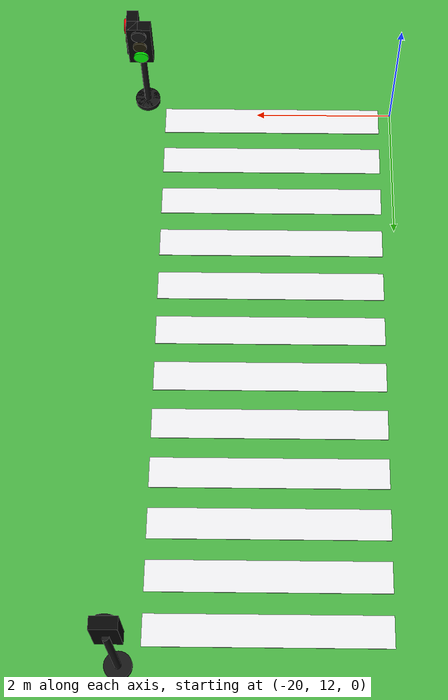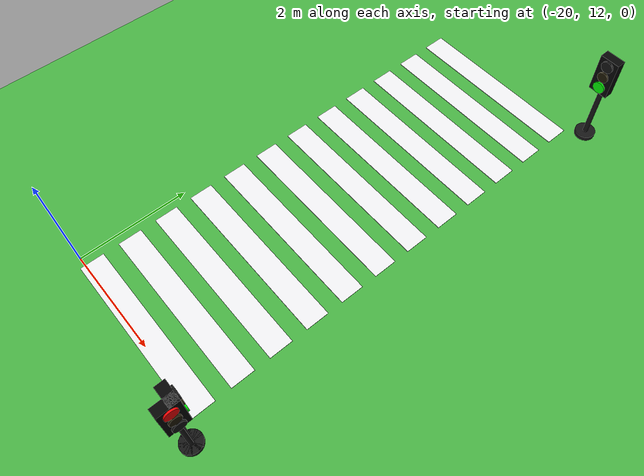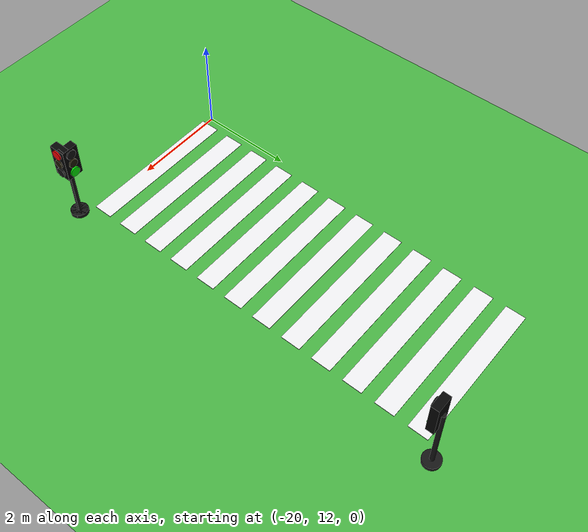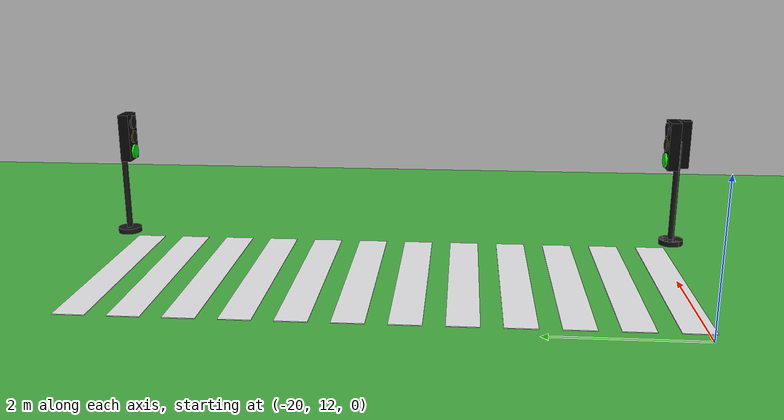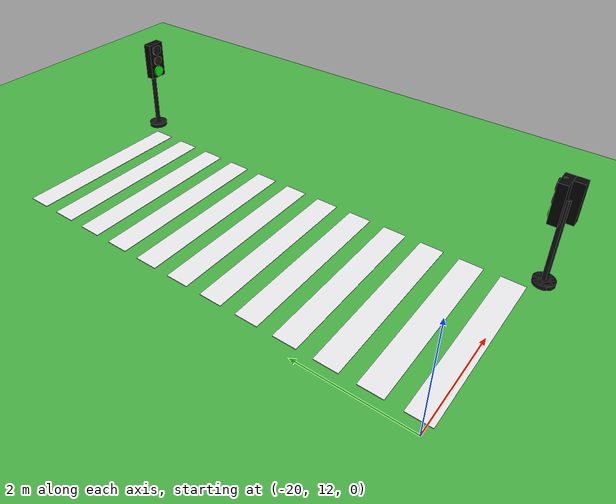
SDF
<sdf version="1.10">
 <world name="city_second">
  <model name="ground_plane">
   <static>true</static>
   <link name="link">
    <collision name="collision">
     <geometry><plane><normal>0 0 1</normal><size>300 300</size></plane></geometry>
    </collision>
    <visual name="visual">
     <geometry><plane><normal>0 0 1</normal><size>300 300</size></plane></geometry>
     <material>
      <ambient>0.280000001 0.689999998 0.25999999 1</ambient>
      <diffuse>0.280000001 0.689999998 0.25999999 1</diffuse>
      <specular>0.0299999993 0.0299999993 0.0299999993 1</specular>
     </material>
    </visual>
    <inertial>
     <mass>1</mass>
     <inertia><ixx>1</ixx><ixy>0</ixy><ixz>0</ixz><iyy>1</iyy><iyz>0</iyz><izz>1</izz></inertia>
    </inertial>
   </link>
  </model>
  <model name="crosswalk_v_2_1_east_5_1">
   <static>true</static>
   <pose>-18.222100000000001 15.9703 0.017000000000000001 0 0 0</pose>
   <link name="stripe_1">
    <collision name="collision">
     <geometry><box><size>3.2000000000000002 0.41999999999999998 0.01</size></box></geometry>
    </collision>
    <visual name="visual">
     <geometry><box><size>3.2000000000000002 0.41999999999999998 0.01</size></box></geometry>
     <material>
      <ambient>0.920000017 0.920000017 0.930000007 1</ambient>
      <diffuse>0.920000017 0.920000017 0.930000007 1</diffuse>
      <specular>0.0299999993 0.0299999993 0.0299999993 1</specular>
     </material>
    </visual>
    <pose>0 -3.8500000000000001 0 0 0 0</pose>
    <inertial>
     <mass>1</mass>
     <inertia><ixx>1</ixx><ixy>0</ixy><ixz>0</ixz><iyy>1</iyy><iyz>0</iyz><izz>1</izz></inertia>
    </inertial>
   </link>
   <link name="stripe_2">
    <collision name="collision">
     <geometry><box><size>3.2000000000000002 0.41999999999999998 0.01</size></box></geometry>
    </collision>
    <visual name="visual">
     <geometry><box><size>3.2000000000000002 0.41999999999999998 0.01</size></box></geometry>
     <material>
      <ambient>0.920000017 0.920000017 0.930000007 1</ambient>
      <diffuse>0.920000017 0.920000017 0.930000007 1</diffuse>
      <specular>0.0299999993 0.0299999993 0.0299999993 1</specular>
     </material>
    </visual>
    <pose>0 -3.1500000000000004 0 0 0 0</pose>
    <inertial>
     <mass>1</mass>
     <inertia><ixx>1</ixx><ixy>0</ixy><ixz>0</ixz><iyy>1</iyy><iyz>0</iyz><izz>1</izz></inertia>
    </inertial>
   </link>
   <link name="stripe_3">
    <collision name="collision">
     <geometry><box><size>3.2000000000000002 0.41999999999999998 0.01</size></box></geometry>
    </collision>
    <visual name="visual">
     <geometry><box><size>3.2000000000000002 0.41999999999999998 0.01</size></box></geometry>
     <material>
      <ambient>0.920000017 0.920000017 0.930000007 1</ambient>
      <diffuse>0.920000017 0.920000017 0.930000007 1</diffuse>
      <specular>0.0299999993 0.0299999993 0.0299999993 1</specular>
     </material>
    </visual>
    <pose>0 -2.4500000000000011 0 0 0 0</pose>
    <inertial>
     <mass>1</mass>
     <inertia><ixx>1</ixx><ixy>0</ixy><ixz>0</ixz><iyy>1</iyy><iyz>0</iyz><izz>1</izz></inertia>
    </inertial>
   </link>
   <link name="stripe_4">
    <collision name="collision">
     <geometry><box><size>3.2000000000000002 0.41999999999999998 0.01</size></box></geometry>
    </collision>
    <visual name="visual">
     <geometry><box><size>3.2000000000000002 0.41999999999999998 0.01</size></box></geometry>
     <material>
      <ambient>0.920000017 0.920000017 0.930000007 1</ambient>
      <diffuse>0.920000017 0.920000017 0.930000007 1</diffuse>
      <specular>0.0299999993 0.0299999993 0.0299999993 1</specular>
     </material>
    </visual>
    <pose>0 -1.75 0 0 0 0</pose>
    <inertial>
     <mass>1</mass>
     <inertia><ixx>1</ixx><ixy>0</ixy><ixz>0</ixz><iyy>1</iyy><iyz>0</iyz><izz>1</izz></inertia>
    </inertial>
   </link>
   <link name="stripe_5">
    <collision name="collision">
     <geometry><box><size>3.2000000000000002 0.41999999999999998 0.01</size></box></geometry>
    </collision>
    <visual name="visual">
     <geometry><box><size>3.2000000000000002 0.41999999999999998 0.01</size></box></geometry>
     <material>
      <ambient>0.920000017 0.920000017 0.930000007 1</ambient>
      <diffuse>0.920000017 0.920000017 0.930000007 1</diffuse>
      <specular>0.0299999993 0.0299999993 0.0299999993 1</specular>
     </material>
    </visual>
    <pose>0 -1.0500000000000007 0 0 0 0</pose>
    <inertial>
     <mass>1</mass>
     <inertia><ixx>1</ixx><ixy>0</ixy><ixz>0</ixz><iyy>1</iyy><iyz>0</iyz><izz>1</izz></inertia>
    </inertial>
   </link>
   <link name="stripe_6">
    <collision name="collision">
     <geometry><box><size>3.2000000000000002 0.41999999999999998 0.01</size></box></geometry>
    </collision>
    <visual name="visual">
     <geometry><box><size>3.2000000000000002 0.41999999999999998 0.01</size></box></geometry>
     <material>
      <ambient>0.920000017 0.920000017 0.930000007 1</ambient>
      <diffuse>0.920000017 0.920000017 0.930000007 1</diffuse>
      <specular>0.0299999993 0.0299999993 0.0299999993 1</specular>
     </material>
    </visual>
    <pose>0 -0.34999999999999964 0 0 0 0</pose>
    <inertial>
     <mass>1</mass>
     <inertia><ixx>1</ixx><ixy>0</ixy><ixz>0</ixz><iyy>1</iyy><iyz>0</iyz><izz>1</izz></inertia>
    </inertial>
   </link>
   <link name="stripe_7">
    <collision name="collision">
     <geometry><box><size>3.2000000000000002 0.41999999999999998 0.01</size></box></geometry>
    </collision>
    <visual name="visual">
     <geometry><box><size>3.2000000000000002 0.41999999999999998 0.01</size></box></geometry>
     <material>
      <ambient>0.920000017 0.920000017 0.930000007 1</ambient>
      <diffuse>0.920000017 0.920000017 0.930000007 1</diffuse>
      <specular>0.0299999993 0.0299999993 0.0299999993 1</specular>
     </material>
    </visual>
    <pose>0 0.34999999999999964 0 0 0 0</pose>
    <inertial>
     <mass>1</mass>
     <inertia><ixx>1</ixx><ixy>0</ixy><ixz>0</ixz><iyy>1</iyy><iyz>0</iyz><izz>1</izz></inertia>
    </inertial>
   </link>
   <link name="stripe_8">
    <collision name="collision">
     <geometry><box><size>3.2000000000000002 0.41999999999999998 0.01</size></box></geometry>
    </collision>
    <visual name="visual">
     <geometry><box><size>3.2000000000000002 0.41999999999999998 0.01</size></box></geometry>
     <material>
      <ambient>0.920000017 0.920000017 0.930000007 1</ambient>
      <diffuse>0.920000017 0.920000017 0.930000007 1</diffuse>
      <specular>0.0299999993 0.0299999993 0.0299999993 1</specular>
     </material>
    </visual>
    <pose>0 1.0499999999999989 0 0 0 0</pose>
    <inertial>
     <mass>1</mass>
     <inertia><ixx>1</ixx><ixy>0</ixy><ixz>0</ixz><iyy>1</iyy><iyz>0</iyz><izz>1</izz></inertia>
    </inertial>
   </link>
   <link name="stripe_9">
    <collision name="collision">
     <geometry><box><size>3.2000000000000002 0.41999999999999998 0.01</size></box></geometry>
    </collision>
    <visual name="visual">
     <geometry><box><size>3.2000000000000002 0.41999999999999998 0.01</size></box></geometry>
     <material>
      <ambient>0.920000017 0.920000017 0.930000007 1</ambient>
      <diffuse>0.920000017 0.920000017 0.930000007 1</diffuse>
      <specular>0.0299999993 0.0299999993 0.0299999993 1</specular>
     </material>
    </visual>
    <pose>0 1.7500000000000018 0 0 0 0</pose>
    <inertial>
     <mass>1</mass>
     <inertia><ixx>1</ixx><ixy>0</ixy><ixz>0</ixz><iyy>1</iyy><iyz>0</iyz><izz>1</izz></inertia>
    </inertial>
   </link>
   <link name="stripe_10">
    <collision name="collision">
     <geometry><box><size>3.2000000000000002 0.41999999999999998 0.01</size></box></geometry>
    </collision>
    <visual name="visual">
     <geometry><box><size>3.2000000000000002 0.41999999999999998 0.01</size></box></geometry>
     <material>
      <ambient>0.920000017 0.920000017 0.930000007 1</ambient>
      <diffuse>0.920000017 0.920000017 0.930000007 1</diffuse>
      <specular>0.0299999993 0.0299999993 0.0299999993 1</specular>
     </material>
    </visual>
    <pose>0 2.4500000000000011 0 0 0 0</pose>
    <inertial>
     <mass>1</mass>
     <inertia><ixx>1</ixx><ixy>0</ixy><ixz>0</ixz><iyy>1</iyy><iyz>0</iyz><izz>1</izz></inertia>
    </inertial>
   </link>
   <link name="stripe_11">
    <collision name="collision">
     <geometry><box><size>3.2000000000000002 0.41999999999999998 0.01</size></box></geometry>
    </collision>
    <visual name="visual">
     <geometry><box><size>3.2000000000000002 0.41999999999999998 0.01</size></box></geometry>
     <material>
      <ambient>0.920000017 0.920000017 0.930000007 1</ambient>
      <diffuse>0.920000017 0.920000017 0.930000007 1</diffuse>
      <specular>0.0299999993 0.0299999993 0.0299999993 1</specular>
     </material>
    </visual>
    <pose>0 3.1500000000000004 0 0 0 0</pose>
    <inertial>
     <mass>1</mass>
     <inertia><ixx>1</ixx><ixy>0</ixy><ixz>0</ixz><iyy>1</iyy><iyz>0</iyz><izz>1</izz></inertia>
    </inertial>
   </link>
   <link name="stripe_12">
    <collision name="collision">
     <geometry><box><size>3.2000000000000002 0.41999999999999998 0.01</size></box></geometry>
    </collision>
    <visual name="visual">
     <geometry><box><size>3.2000000000000002 0.41999999999999998 0.01</size></box></geometry>
     <material>
      <ambient>0.920000017 0.920000017 0.930000007 1</ambient>
      <diffuse>0.920000017 0.920000017 0.930000007 1</diffuse>
      <specular>0.0299999993 0.0299999993 0.0299999993 1</specular>
     </material>
    </visual>
    <pose>0 3.8499999999999996 0 0 0 0</pose>
    <inertial>
     <mass>1</mass>
     <inertia><ixx>1</ixx><ixy>0</ixy><ixz>0</ixz><iyy>1</iyy><iyz>0</iyz><izz>1</izz></inertia>
    </inertial>
   </link>
  </model>
  <model name="simple_traffic_light_green_south_1_3_1">
   <static>true</static>
   <pose>-16.354454184301069 20.279661688850851 0 0 0 -3.1415900000000754</pose>
   <link name="base">
    <pose>0 0 0.040000000000000001 0 0 0</pose>
    <collision name="collision">
     <geometry>
      <cylinder><radius>0.17999999999999999</radius><length>0.080000000000000002</length></cylinder>
     </geometry>
    </collision>
    <visual name="visual">
     <geometry>
      <cylinder><radius>0.17999999999999999</radius><length>0.080000000000000002</length></cylinder>
     </geometry>
     <material>
      <ambient>0.0799999982 0.0799999982 0.0799999982 1</ambient>
      <diffuse>0.0799999982 0.0799999982 0.0799999982 1</diffuse>
      <specular>0.150000006 0.150000006 0.150000006 1</specular>
      <emissive>0 0 0 1</emissive>
     </material>
    </visual>
    <inertial>
     <mass>1</mass>
     <inertia><ixx>1</ixx><ixy>0</ixy><ixz>0</ixz><iyy>1</iyy><iyz>0</iyz><izz>1</izz></inertia>
    </inertial>
   </link>
   <link name="pole">
    <pose>3.5527136788005009e-15 3.5527136788005009e-15 0.80000000000000016 0 0 0</pose>
    <collision name="collision">
     <geometry>
      <cylinder><radius>0.044999999999999998</radius><length>1.6000000000000001</length></cylinder>
     </geometry>
    </collision>
    <visual name="visual">
     <geometry>
      <cylinder><radius>0.044999999999999998</radius><length>1.6000000000000001</length></cylinder>
     </geometry>
     <material>
      <ambient>0.0799999982 0.0799999982 0.0799999982 1</ambient>
      <diffuse>0.0799999982 0.0799999982 0.0799999982 1</diffuse>
      <specular>0.150000006 0.150000006 0.150000006 1</specular>
      <emissive>0 0 0 1</emissive>
     </material>
    </visual>
    <inertial>
     <mass>1</mass>
     <inertia><ixx>1</ixx><ixy>0</ixy><ixz>0</ixz><iyy>1</iyy><iyz>0</iyz><izz>1</izz></inertia>
    </inertial>
   </link>
   <link name="signal_box">
    <pose>3.5527136788005009e-15 0.090000000000003411 1.5500000000000003 0 0 0</pose>
    <collision name="collision">
     <geometry><box><size>0.34000000000000002 0.16 0.71999999999999997</size></box></geometry>
    </collision>
    <visual name="visual">
     <geometry><box><size>0.34000000000000002 0.16 0.71999999999999997</size></box></geometry>
     <material>
      <ambient>0.0199999996 0.0199999996 0.0199999996 1</ambient>
      <diffuse>0.0199999996 0.0199999996 0.0199999996 1</diffuse>
      <specular>0.150000006 0.150000006 0.150000006 1</specular>
      <emissive>0 0 0 1</emissive>
     </material>
    </visual>
    <inertial>
     <mass>1</mass>
     <inertia><ixx>1</ixx><ixy>0</ixy><ixz>0</ixz><iyy>1</iyy><iyz>0</iyz><izz>1</izz></inertia>
    </inertial>
   </link>
   <link name="red_lens">
    <pose>3.5527136788005009e-15 0.18099999999999739 1.78 1.5707963267999998 1.2475048931562623e-16 -1.2475078878636004e-16</pose>
    <collision name="collision">
     <geometry><cylinder><radius>0.105</radius><length>0.035000000000000003</length></cylinder></geometry>
    </collision>
    <visual name="visual">
     <geometry><cylinder><radius>0.105</radius><length>0.035000000000000003</length></cylinder></geometry>
     <material>
      <ambient>0.0799999982 0.0799999982 0.0799999982 1</ambient>
      <diffuse>0.0799999982 0.0799999982 0.0799999982 1</diffuse>
      <specular>0.150000006 0.150000006 0.150000006 1</specular>
      <emissive>0 0 0 1</emissive>
     </material>
    </visual>
    <inertial>
     <mass>1</mass>
     <inertia><ixx>1</ixx><ixy>0</ixy><ixz>0</ixz><iyy>1</iyy><iyz>0</iyz><izz>1</izz></inertia>
    </inertial>
   </link>
   <link name="yellow_lens">
    <pose>0 0.18200000000000216 1.5500000000000003 1.5707963267999998 1.2475048931562623e-16 -1.2475078878636004e-16</pose>
    <collision name="collision">
     <geometry>
      <cylinder><radius>0.095000000000000001</radius><length>0.035000000000000003</length></cylinder>
     </geometry>
    </collision>
    <visual name="visual">
     <geometry>
      <cylinder><radius>0.095000000000000001</radius><length>0.035000000000000003</length></cylinder>
     </geometry>
     <material>
      <ambient>0.119999997 0.100000001 0.0199999996 1</ambient>
      <diffuse>0.119999997 0.100000001 0.0199999996 1</diffuse>
      <specular>0.150000006 0.150000006 0.150000006 1</specular>
      <emissive>0 0 0 1</emissive>
     </material>
    </visual>
    <inertial>
     <mass>1</mass>
     <inertia><ixx>1</ixx><ixy>0</ixy><ixz>0</ixz><iyy>1</iyy><iyz>0</iyz><izz>1</izz></inertia>
    </inertial>
   </link>
   <link name="green_lens">
    <pose>3.5527136788005009e-15 0.18300000000000338 1.3200000000000003 1.5707963267999998 1.2475048931562623e-16 -1.2475078878636004e-16</pose>
    <collision name="collision">
     <geometry><cylinder><radius>0.105</radius><length>0.035000000000000003</length></cylinder></geometry>
    </collision>
    <visual name="visual">
     <geometry><cylinder><radius>0.105</radius><length>0.035000000000000003</length></cylinder></geometry>
     <material>
      <ambient>0.0199999996 1 0.0199999996 1</ambient>
      <diffuse>0.0199999996 1 0.0199999996 1</diffuse>
      <specular>0.150000006 0.150000006 0.150000006 1</specular>
      <emissive>0.0199999996 1 0.0199999996 1</emissive>
     </material>
    </visual>
    <inertial>
     <mass>1</mass>
     <inertia><ixx>1</ixx><ixy>0</ixy><ixz>0</ixz><iyy>1</iyy><iyz>0</iyz><izz>1</izz></inertia>
    </inertial>
   </link>
  </model>
  <model name="simple_traffic_light_green_north_1_2_2">
   <static>true</static>
   <pose>-16.344982830740257 11.749732074179992 0 0 0 0</pose>
   <link name="base">
    <pose>0 0 0.040000000000000001 0 0 0</pose>
    <collision name="collision">
     <geometry>
      <cylinder><radius>0.17999999999999999</radius><length>0.080000000000000002</length></cylinder>
     </geometry>
    </collision>
    <visual name="visual">
     <geometry>
      <cylinder><radius>0.17999999999999999</radius><length>0.080000000000000002</length></cylinder>
     </geometry>
     <material>
      <ambient>0.0799999982 0.0799999982 0.0799999982 1</ambient>
      <diffuse>0.0799999982 0.0799999982 0.0799999982 1</diffuse>
      <specular>0.150000006 0.150000006 0.150000006 1</specular>
      <emissive>0 0 0 1</emissive>
     </material>
    </visual>
    <inertial>
     <mass>1</mass>
     <inertia><ixx>1</ixx><ixy>0</ixy><ixz>0</ixz><iyy>1</iyy><iyz>0</iyz><izz>1</izz></inertia>
    </inertial>
   </link>
   <link name="pole">
    <pose>0 0 0.80000000000000004 0 0 0</pose>
    <collision name="collision">
     <geometry>
      <cylinder><radius>0.044999999999999998</radius><length>1.6000000000000001</length></cylinder>
     </geometry>
    </collision>
    <visual name="visual">
     <geometry>
      <cylinder><radius>0.044999999999999998</radius><length>1.6000000000000001</length></cylinder>
     </geometry>
     <material>
      <ambient>0.0799999982 0.0799999982 0.0799999982 1</ambient>
      <diffuse>0.0799999982 0.0799999982 0.0799999982 1</diffuse>
      <specular>0.150000006 0.150000006 0.150000006 1</specular>
      <emissive>0 0 0 1</emissive>
     </material>
    </visual>
    <inertial>
     <mass>1</mass>
     <inertia><ixx>1</ixx><ixy>0</ixy><ixz>0</ixz><iyy>1</iyy><iyz>0</iyz><izz>1</izz></inertia>
    </inertial>
   </link>
   <link name="signal_box">
    <pose>0 0.089999999999999858 1.55 0 0 0</pose>
    <collision name="collision">
     <geometry><box><size>0.34000000000000002 0.16 0.71999999999999997</size></box></geometry>
    </collision>
    <visual name="visual">
     <geometry><box><size>0.34000000000000002 0.16 0.71999999999999997</size></box></geometry>
     <material>
      <ambient>0.0199999996 0.0199999996 0.0199999996 1</ambient>
      <diffuse>0.0199999996 0.0199999996 0.0199999996 1</diffuse>
      <specular>0.150000006 0.150000006 0.150000006 1</specular>
      <emissive>0 0 0 1</emissive>
     </material>
    </visual>
    <inertial>
     <mass>1</mass>
     <inertia><ixx>1</ixx><ixy>0</ixy><ixz>0</ixz><iyy>1</iyy><iyz>0</iyz><izz>1</izz></inertia>
    </inertial>
   </link>
   <link name="red_lens">
    <pose>0 0.18099999999999916 1.78 1.5707963268000003 0 0</pose>
    <collision name="collision">
     <geometry><cylinder><radius>0.105</radius><length>0.035000000000000003</length></cylinder></geometry>
    </collision>
    <visual name="visual">
     <geometry><cylinder><radius>0.105</radius><length>0.035000000000000003</length></cylinder></geometry>
     <material>
      <ambient>0.0799999982 0.0799999982 0.0799999982 1</ambient>
      <diffuse>0.0799999982 0.0799999982 0.0799999982 1</diffuse>
      <specular>0.150000006 0.150000006 0.150000006 1</specular>
      <emissive>0 0 0 1</emissive>
     </material>
    </visual>
    <inertial>
     <mass>1</mass>
     <inertia><ixx>1</ixx><ixy>0</ixy><ixz>0</ixz><iyy>1</iyy><iyz>0</iyz><izz>1</izz></inertia>
    </inertial>
   </link>
   <link name="yellow_lens">
    <pose>0 0.18200000000000038 1.55 1.5707963268000003 0 0</pose>
    <collision name="collision">
     <geometry>
      <cylinder><radius>0.095000000000000001</radius><length>0.035000000000000003</length></cylinder>
     </geometry>
    </collision>
    <visual name="visual">
     <geometry>
      <cylinder><radius>0.095000000000000001</radius><length>0.035000000000000003</length></cylinder>
     </geometry>
     <material>
      <ambient>0.119999997 0.100000001 0.0199999996 1</ambient>
      <diffuse>0.119999997 0.100000001 0.0199999996 1</diffuse>
      <specular>0.150000006 0.150000006 0.150000006 1</specular>
      <emissive>0 0 0 1</emissive>
     </material>
    </visual>
    <inertial>
     <mass>1</mass>
     <inertia><ixx>1</ixx><ixy>0</ixy><ixz>0</ixz><iyy>1</iyy><iyz>0</iyz><izz>1</izz></inertia>
    </inertial>
   </link>
   <link name="green_lens">
    <pose>0 0.18299999999999983 1.3200000000000001 1.5707963268000003 0 0</pose>
    <collision name="collision">
     <geometry><cylinder><radius>0.105</radius><length>0.035000000000000003</length></cylinder></geometry>
    </collision>
    <visual name="visual">
     <geometry><cylinder><radius>0.105</radius><length>0.035000000000000003</length></cylinder></geometry>
     <material>
      <ambient>0.0199999996 1 0.0199999996 1</ambient>
      <diffuse>0.0199999996 1 0.0199999996 1</diffuse>
      <specular>0.150000006 0.150000006 0.150000006 1</specular>
      <emissive>0.0199999996 1 0.0199999996 1</emissive>
     </material>
    </visual>
    <inertial>
     <mass>1</mass>
     <inertia><ixx>1</ixx><ixy>0</ixy><ixz>0</ixz><iyy>1</iyy><iyz>0</iyz><izz>1</izz></inertia>
    </inertial>
   </link>
  </model>
  <model name="simple_traffic_light_red_east_5">
   <static>true</static>
   <pose>-16.341755595436247 11.74528513419834 -1.3877787807814457e-17 0 0 -1.5707999672671711</pose>
   <link name="base">
    <pose>0 0 0.040000000000000001 0 0 0</pose>
    <collision name="collision">
     <geometry>
      <cylinder><radius>0.17999999999999999</radius><length>0.080000000000000002</length></cylinder>
     </geometry>
    </collision>
    <visual name="visual">
     <geometry>
      <cylinder><radius>0.17999999999999999</radius><length>0.080000000000000002</length></cylinder>
     </geometry>
     <material>
      <ambient>0.0799999982 0.0799999982 0.0799999982 1</ambient>
      <diffuse>0.0799999982 0.0799999982 0.0799999982 1</diffuse>
      <specular>0.150000006 0.150000006 0.150000006 1</specular>
      <emissive>0 0 0 1</emissive>
     </material>
    </visual>
    <inertial>
     <mass>1</mass>
     <inertia><ixx>1</ixx><ixy>0</ixy><ixz>0</ixz><iyy>1</iyy><iyz>0</iyz><izz>1</izz></inertia>
    </inertial>
   </link>
   <link name="pole">
    <pose>-7.1054273576010019e-15 0 0.80000000000000004 0 0 -3.3306690738754696e-16</pose>
    <collision name="collision">
     <geometry>
      <cylinder><radius>0.044999999999999998</radius><length>1.6000000000000001</length></cylinder>
     </geometry>
    </collision>
    <visual name="visual">
     <geometry>
      <cylinder><radius>0.044999999999999998</radius><length>1.6000000000000001</length></cylinder>
     </geometry>
     <material>
      <ambient>0.0799999982 0.0799999982 0.0799999982 1</ambient>
      <diffuse>0.0799999982 0.0799999982 0.0799999982 1</diffuse>
      <specular>0.150000006 0.150000006 0.150000006 1</specular>
      <emissive>0 0 0 1</emissive>
     </material>
    </visual>
    <inertial>
     <mass>1</mass>
     <inertia><ixx>1</ixx><ixy>0</ixy><ixz>0</ixz><iyy>1</iyy><iyz>0</iyz><izz>1</izz></inertia>
    </inertial>
   </link>
   <link name="signal_box">
    <pose>7.1054273576010019e-15 0.089999999999996305 1.5500000000000003 0 0 -3.3306690738754696e-16</pose>
    <collision name="collision">
     <geometry><box><size>0.34000000000000002 0.16 0.71999999999999997</size></box></geometry>
    </collision>
    <visual name="visual">
     <geometry><box><size>0.34000000000000002 0.16 0.71999999999999997</size></box></geometry>
     <material>
      <ambient>0.0199999996 0.0199999996 0.0199999996 1</ambient>
      <diffuse>0.0199999996 0.0199999996 0.0199999996 1</diffuse>
      <specular>0.150000006 0.150000006 0.150000006 1</specular>
      <emissive>0 0 0 1</emissive>
     </material>
    </visual>
    <inertial>
     <mass>1</mass>
     <inertia><ixx>1</ixx><ixy>0</ixy><ixz>0</ixz><iyy>1</iyy><iyz>0</iyz><izz>1</izz></inertia>
    </inertial>
   </link>
   <link name="red_lens">
    <pose>-7.1054273576010019e-15 0.18099999999999739 1.78 1.5707963267999998 7.8504622930783579e-17 1.3345785898814093e-15</pose>
    <collision name="collision">
     <geometry><cylinder><radius>0.105</radius><length>0.035000000000000003</length></cylinder></geometry>
    </collision>
    <visual name="visual">
     <geometry><cylinder><radius>0.105</radius><length>0.035000000000000003</length></cylinder></geometry>
     <material>
      <ambient>1 0.0199999996 0.0199999996 1</ambient>
      <diffuse>1 0.0199999996 0.0199999996 1</diffuse>
      <specular>0.150000006 0.150000006 0.150000006 1</specular>
      <emissive>1 0.0199999996 0.0199999996 1</emissive>
     </material>
    </visual>
    <inertial>
     <mass>1</mass>
     <inertia><ixx>1</ixx><ixy>0</ixy><ixz>0</ixz><iyy>1</iyy><iyz>0</iyz><izz>1</izz></inertia>
    </inertial>
   </link>
   <link name="yellow_lens">
    <pose>-7.1054273576010019e-15 0.18199999999999861 1.5500000000000003 1.5707963267999998 7.8504622930783579e-17 1.3345785898814093e-15</pose>
    <collision name="collision">
     <geometry>
      <cylinder><radius>0.095000000000000001</radius><length>0.035000000000000003</length></cylinder>
     </geometry>
    </collision>
    <visual name="visual">
     <geometry>
      <cylinder><radius>0.095000000000000001</radius><length>0.035000000000000003</length></cylinder>
     </geometry>
     <material>
      <ambient>0.119999997 0.100000001 0.0199999996 1</ambient>
      <diffuse>0.119999997 0.100000001 0.0199999996 1</diffuse>
      <specular>0.150000006 0.150000006 0.150000006 1</specular>
      <emissive>0 0 0 1</emissive>
     </material>
    </visual>
    <inertial>
     <mass>1</mass>
     <inertia><ixx>1</ixx><ixy>0</ixy><ixz>0</ixz><iyy>1</iyy><iyz>0</iyz><izz>1</izz></inertia>
    </inertial>
   </link>
   <link name="green_lens">
    <pose>0 0.18300000000000338 1.3199999999999998 1.5707963267999998 7.8504622930783579e-17 1.3345785898814093e-15</pose>
    <collision name="collision">
     <geometry><cylinder><radius>0.105</radius><length>0.035000000000000003</length></cylinder></geometry>
    </collision>
    <visual name="visual">
     <geometry><cylinder><radius>0.105</radius><length>0.035000000000000003</length></cylinder></geometry>
     <material>
      <ambient>0.0799999982 0.0799999982 0.0799999982 1</ambient>
      <diffuse>0.0799999982 0.0799999982 0.0799999982 1</diffuse>
      <specular>0.150000006 0.150000006 0.150000006 1</specular>
      <emissive>0 0 0 1</emissive>
     </material>
    </visual>
    <inertial>
     <mass>1</mass>
     <inertia><ixx>1</ixx><ixy>0</ixy><ixz>0</ixz><iyy>1</iyy><iyz>0</iyz><izz>1</izz></inertia>
    </inertial>
   </link>
  </model>
 </world>
</sdf>
